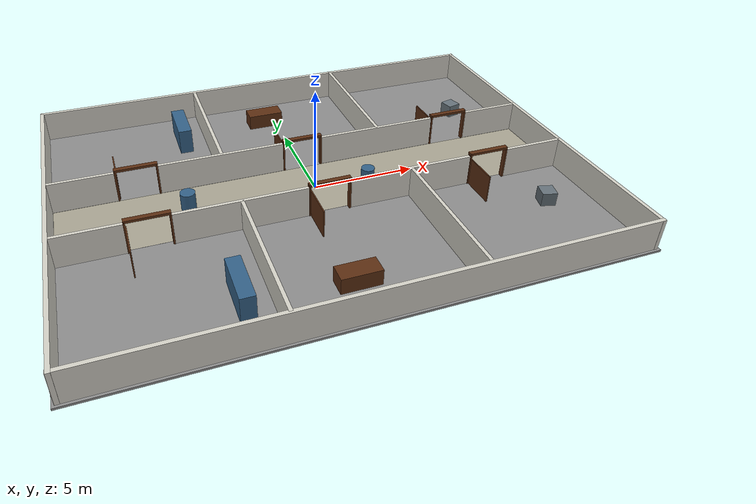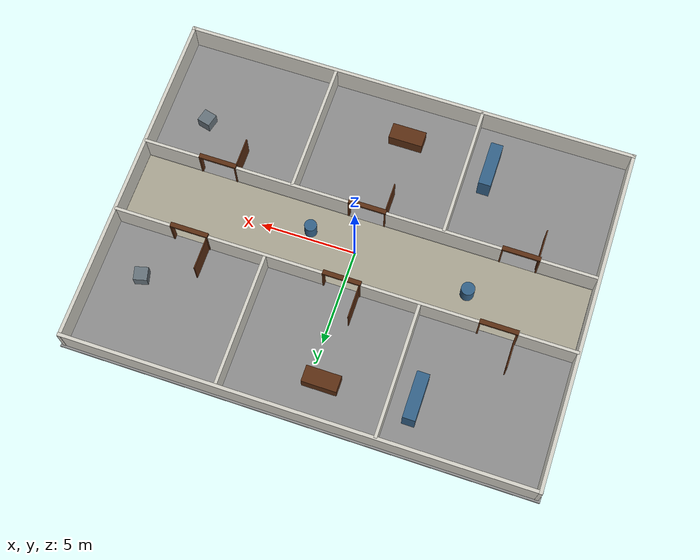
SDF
<sdf version="1.7">
 <world name="v550_rooms">
  <gravity>0 0 -9.8</gravity>
  <physics type="ode">
   <max_step_size>0.001</max_step_size>
   <real_time_update_rate>1000</real_time_update_rate>
   <real_time_factor>1</real_time_factor>
  </physics>
  <scene><ambient>0.65 0.65 0.65 1</ambient><background>0.7 0.73 0.77 1</background><shadows>0</shadows></scene>
  <light name="sun" type="directional">
   <pose>0 0 15 0 -0 0</pose>
   <diffuse>0.8 0.8 0.8 1</diffuse>
   <direction>-0.3 0.2 -1</direction>
   <cast_shadows>0</cast_shadows>
   <attenuation><range>10</range></attenuation>
   <spot><inner_angle>0</inner_angle><outer_angle>0</outer_angle><falloff>0</falloff></spot>
  </light>
  <model name="floor">
   <static>1</static>
   <pose>0 0 -0.05 0 -0 0</pose>
   <link name="link">
    <collision name="collision"><geometry><box><size>24.4 18.4 0.1</size></box></geometry></collision>
    <visual name="visual">
     <geometry><box><size>24.4 18.4 0.1</size></box></geometry>
     <material><ambient>0.55 0.55 0.55 1</ambient><diffuse>0.55 0.55 0.55 1</diffuse></material>
    </visual>
   </link>
  </model>
  <model name="corridor_floor_marking">
   <static>1</static>
   <pose>0 0 0.001 0 -0 0</pose>
   <link name="link">
    <visual name="visual">
     <geometry><box><size>23.8 3.8 0.002</size></box></geometry>
     <material><ambient>0.66 0.64 0.57 1</ambient><diffuse>0.66 0.64 0.57 1</diffuse></material>
    </visual>
   </link>
  </model>
  <model name="outer_north">
   <static>1</static>
   <pose>0 9 0.75 0 -0 0</pose>
   <link name="link">
    <collision name="collision"><geometry><box><size>24.2 0.18 1.5</size></box></geometry></collision>
    <visual name="visual">
     <geometry><box><size>24.2 0.18 1.5</size></box></geometry>
     <material><ambient>0.83 0.82 0.78 1</ambient><diffuse>0.83 0.82 0.78 1</diffuse></material>
    </visual>
   </link>
  </model>
  <model name="outer_south">
   <static>1</static>
   <pose>0 -9 0.75 0 -0 0</pose>
   <link name="link">
    <collision name="collision"><geometry><box><size>24.2 0.18 1.5</size></box></geometry></collision>
    <visual name="visual">
     <geometry><box><size>24.2 0.18 1.5</size></box></geometry>
     <material><ambient>0.83 0.82 0.78 1</ambient><diffuse>0.83 0.82 0.78 1</diffuse></material>
    </visual>
   </link>
  </model>
  <model name="outer_west">
   <static>1</static>
   <pose>-12 0 0.75 0 -0 0</pose>
   <link name="link">
    <collision name="collision"><geometry><box><size>0.18 18.2 1.5</size></box></geometry></collision>
    <visual name="visual">
     <geometry><box><size>0.18 18.2 1.5</size></box></geometry>
     <material><ambient>0.83 0.82 0.78 1</ambient><diffuse>0.83 0.82 0.78 1</diffuse></material>
    </visual>
   </link>
  </model>
  <model name="outer_east">
   <static>1</static>
   <pose>12 0 0.75 0 -0 0</pose>
   <link name="link">
    <collision name="collision"><geometry><box><size>0.18 18.2 1.5</size></box></geometry></collision>
    <visual name="visual">
     <geometry><box><size>0.18 18.2 1.5</size></box></geometry>
     <material><ambient>0.83 0.82 0.78 1</ambient><diffuse>0.83 0.82 0.78 1</diffuse></material>
    </visual>
   </link>
  </model>
  <model name="north_front_0">
   <static>1</static>
   <pose>-10.475 2 0.75 0 -0 0</pose>
   <link name="link">
    <collision name="collision"><geometry><box><size>3.05 0.16 1.5</size></box></geometry></collision>
    <visual name="visual">
     <geometry><box><size>3.05 0.16 1.5</size></box></geometry>
     <material><ambient>0.83 0.82 0.78 1</ambient><diffuse>0.83 0.82 0.78 1</diffuse></material>
    </visual>
   </link>
  </model>
  <model name="north_front_1">
   <static>1</static>
   <pose>-4 2 0.75 0 -0 0</pose>
   <link name="link">
    <collision name="collision"><geometry><box><size>6.1 0.16 1.5</size></box></geometry></collision>
    <visual name="visual">
     <geometry><box><size>6.1 0.16 1.5</size></box></geometry>
     <material><ambient>0.83 0.82 0.78 1</ambient><diffuse>0.83 0.82 0.78 1</diffuse></material>
    </visual>
   </link>
  </model>
  <model name="north_front_2">
   <static>1</static>
   <pose>4 2 0.75 0 -0 0</pose>
   <link name="link">
    <collision name="collision"><geometry><box><size>6.1 0.16 1.5</size></box></geometry></collision>
    <visual name="visual">
     <geometry><box><size>6.1 0.16 1.5</size></box></geometry>
     <material><ambient>0.83 0.82 0.78 1</ambient><diffuse>0.83 0.82 0.78 1</diffuse></material>
    </visual>
   </link>
  </model>
  <model name="north_front_3">
   <static>1</static>
   <pose>10.475 2 0.75 0 -0 0</pose>
   <link name="link">
    <collision name="collision"><geometry><box><size>3.05 0.16 1.5</size></box></geometry></collision>
    <visual name="visual">
     <geometry><box><size>3.05 0.16 1.5</size></box></geometry>
     <material><ambient>0.83 0.82 0.78 1</ambient><diffuse>0.83 0.82 0.78 1</diffuse></material>
    </visual>
   </link>
  </model>
  <model name="north_partition_-4">
   <static>1</static>
   <pose>-4 5.5 0.75 0 -0 0</pose>
   <link name="link">
    <collision name="collision"><geometry><box><size>0.16 7 1.5</size></box></geometry></collision>
    <visual name="visual">
     <geometry><box><size>0.16 7 1.5</size></box></geometry>
     <material><ambient>0.83 0.82 0.78 1</ambient><diffuse>0.83 0.82 0.78 1</diffuse></material>
    </visual>
   </link>
  </model>
  <model name="north_partition_4">
   <static>1</static>
   <pose>4 5.5 0.75 0 -0 0</pose>
   <link name="link">
    <collision name="collision"><geometry><box><size>0.16 7 1.5</size></box></geometry></collision>
    <visual name="visual">
     <geometry><box><size>0.16 7 1.5</size></box></geometry>
     <material><ambient>0.83 0.82 0.78 1</ambient><diffuse>0.83 0.82 0.78 1</diffuse></material>
    </visual>
   </link>
  </model>
  <model name="north_door_0_open_leaf">
   <static>1</static>
   <pose>-8.9 2.88 0.675 0 -0 0</pose>
   <link name="link">
    <collision name="collision"><geometry><box><size>0.055 1.7 1.35</size></box></geometry></collision>
    <visual name="visual">
     <geometry><box><size>0.055 1.7 1.35</size></box></geometry>
     <material><ambient>0.36 0.18 0.07 1</ambient><diffuse>0.36 0.18 0.07 1</diffuse></material>
    </visual>
   </link>
  </model>
  <model name="north_door_0_jamb_0">
   <static>1</static>
   <pose>-8.95 2 0.8 0 -0 0</pose>
   <link name="link">
    <collision name="collision"><geometry><box><size>0.08 0.24 1.6</size></box></geometry></collision>
    <visual name="visual">
     <geometry><box><size>0.08 0.24 1.6</size></box></geometry>
     <material><ambient>0.36 0.18 0.07 1</ambient><diffuse>0.36 0.18 0.07 1</diffuse></material>
    </visual>
   </link>
  </model>
  <model name="north_door_0_jamb_1">
   <static>1</static>
   <pose>-7.05 2 0.8 0 -0 0</pose>
   <link name="link">
    <collision name="collision"><geometry><box><size>0.08 0.24 1.6</size></box></geometry></collision>
    <visual name="visual">
     <geometry><box><size>0.08 0.24 1.6</size></box></geometry>
     <material><ambient>0.36 0.18 0.07 1</ambient><diffuse>0.36 0.18 0.07 1</diffuse></material>
    </visual>
   </link>
  </model>
  <model name="north_door_0_lintel">
   <static>1</static>
   <pose>-8 2 1.6 0 -0 0</pose>
   <link name="link">
    <collision name="collision"><geometry><box><size>1.98 0.24 0.12</size></box></geometry></collision>
    <visual name="visual">
     <geometry><box><size>1.98 0.24 0.12</size></box></geometry>
     <material><ambient>0.36 0.18 0.07 1</ambient><diffuse>0.36 0.18 0.07 1</diffuse></material>
    </visual>
   </link>
  </model>
  <model name="north_room_0_cabinet">
   <static>1</static>
   <pose>-5.2 6.4 0.625 0 -0 0</pose>
   <link name="link">
    <collision name="collision"><geometry><box><size>0.65 2.4 1.25</size></box></geometry></collision>
    <visual name="visual">
     <geometry><box><size>0.65 2.4 1.25</size></box></geometry>
     <material><ambient>0.2 0.38 0.53 1</ambient><diffuse>0.2 0.38 0.53 1</diffuse></material>
    </visual>
   </link>
  </model>
  <model name="north_door_1_open_leaf">
   <static>1</static>
   <pose>-0.9 2.88 0.675 0 -0 0</pose>
   <link name="link">
    <collision name="collision"><geometry><box><size>0.055 1.7 1.35</size></box></geometry></collision>
    <visual name="visual">
     <geometry><box><size>0.055 1.7 1.35</size></box></geometry>
     <material><ambient>0.36 0.18 0.07 1</ambient><diffuse>0.36 0.18 0.07 1</diffuse></material>
    </visual>
   </link>
  </model>
  <model name="north_door_1_jamb_0">
   <static>1</static>
   <pose>-0.95 2 0.8 0 -0 0</pose>
   <link name="link">
    <collision name="collision"><geometry><box><size>0.08 0.24 1.6</size></box></geometry></collision>
    <visual name="visual">
     <geometry><box><size>0.08 0.24 1.6</size></box></geometry>
     <material><ambient>0.36 0.18 0.07 1</ambient><diffuse>0.36 0.18 0.07 1</diffuse></material>
    </visual>
   </link>
  </model>
  <model name="north_door_1_jamb_1">
   <static>1</static>
   <pose>0.95 2 0.8 0 -0 0</pose>
   <link name="link">
    <collision name="collision"><geometry><box><size>0.08 0.24 1.6</size></box></geometry></collision>
    <visual name="visual">
     <geometry><box><size>0.08 0.24 1.6</size></box></geometry>
     <material><ambient>0.36 0.18 0.07 1</ambient><diffuse>0.36 0.18 0.07 1</diffuse></material>
    </visual>
   </link>
  </model>
  <model name="north_door_1_lintel">
   <static>1</static>
   <pose>0 2 1.6 0 -0 0</pose>
   <link name="link">
    <collision name="collision"><geometry><box><size>1.98 0.24 0.12</size></box></geometry></collision>
    <visual name="visual">
     <geometry><box><size>1.98 0.24 0.12</size></box></geometry>
     <material><ambient>0.36 0.18 0.07 1</ambient><diffuse>0.36 0.18 0.07 1</diffuse></material>
    </visual>
   </link>
  </model>
  <model name="north_room_1_desk">
   <static>1</static>
   <pose>-0.6 6.9 0.375 0 -0 0</pose>
   <link name="link">
    <collision name="collision"><geometry><box><size>1.8 0.85 0.75</size></box></geometry></collision>
    <visual name="visual">
     <geometry><box><size>1.8 0.85 0.75</size></box></geometry>
     <material><ambient>0.36 0.18 0.07 1</ambient><diffuse>0.36 0.18 0.07 1</diffuse></material>
    </visual>
   </link>
  </model>
  <model name="north_door_2_open_leaf">
   <static>1</static>
   <pose>7.1 2.88 0.675 0 -0 0</pose>
   <link name="link">
    <collision name="collision"><geometry><box><size>0.055 1.7 1.35</size></box></geometry></collision>
    <visual name="visual">
     <geometry><box><size>0.055 1.7 1.35</size></box></geometry>
     <material><ambient>0.36 0.18 0.07 1</ambient><diffuse>0.36 0.18 0.07 1</diffuse></material>
    </visual>
   </link>
  </model>
  <model name="north_door_2_jamb_0">
   <static>1</static>
   <pose>7.05 2 0.8 0 -0 0</pose>
   <link name="link">
    <collision name="collision"><geometry><box><size>0.08 0.24 1.6</size></box></geometry></collision>
    <visual name="visual">
     <geometry><box><size>0.08 0.24 1.6</size></box></geometry>
     <material><ambient>0.36 0.18 0.07 1</ambient><diffuse>0.36 0.18 0.07 1</diffuse></material>
    </visual>
   </link>
  </model>
  <model name="north_door_2_jamb_1">
   <static>1</static>
   <pose>8.95 2 0.8 0 -0 0</pose>
   <link name="link">
    <collision name="collision"><geometry><box><size>0.08 0.24 1.6</size></box></geometry></collision>
    <visual name="visual">
     <geometry><box><size>0.08 0.24 1.6</size></box></geometry>
     <material><ambient>0.36 0.18 0.07 1</ambient><diffuse>0.36 0.18 0.07 1</diffuse></material>
    </visual>
   </link>
  </model>
  <model name="north_door_2_lintel">
   <static>1</static>
   <pose>8 2 1.6 0 -0 0</pose>
   <link name="link">
    <collision name="collision"><geometry><box><size>1.98 0.24 0.12</size></box></geometry></collision>
    <visual name="visual">
     <geometry><box><size>1.98 0.24 0.12</size></box></geometry>
     <material><ambient>0.36 0.18 0.07 1</ambient><diffuse>0.36 0.18 0.07 1</diffuse></material>
    </visual>
   </link>
  </model>
  <model name="north_room_2_crate">
   <static>1</static>
   <pose>9.7 4.6 0.325 0 -0 0.25</pose>
   <link name="link">
    <collision name="collision"><geometry><box><size>0.7 0.7 0.65</size></box></geometry></collision>
    <visual name="visual">
     <geometry><box><size>0.7 0.7 0.65</size></box></geometry>
     <material><ambient>0.4 0.45 0.48 1</ambient><diffuse>0.4 0.45 0.48 1</diffuse></material>
    </visual>
   </link>
  </model>
  <model name="south_front_0">
   <static>1</static>
   <pose>-10.475 -2 0.75 0 -0 0</pose>
   <link name="link">
    <collision name="collision"><geometry><box><size>3.05 0.16 1.5</size></box></geometry></collision>
    <visual name="visual">
     <geometry><box><size>3.05 0.16 1.5</size></box></geometry>
     <material><ambient>0.83 0.82 0.78 1</ambient><diffuse>0.83 0.82 0.78 1</diffuse></material>
    </visual>
   </link>
  </model>
  <model name="south_front_1">
   <static>1</static>
   <pose>-4 -2 0.75 0 -0 0</pose>
   <link name="link">
    <collision name="collision"><geometry><box><size>6.1 0.16 1.5</size></box></geometry></collision>
    <visual name="visual">
     <geometry><box><size>6.1 0.16 1.5</size></box></geometry>
     <material><ambient>0.83 0.82 0.78 1</ambient><diffuse>0.83 0.82 0.78 1</diffuse></material>
    </visual>
   </link>
  </model>
  <model name="south_front_2">
   <static>1</static>
   <pose>4 -2 0.75 0 -0 0</pose>
   <link name="link">
    <collision name="collision"><geometry><box><size>6.1 0.16 1.5</size></box></geometry></collision>
    <visual name="visual">
     <geometry><box><size>6.1 0.16 1.5</size></box></geometry>
     <material><ambient>0.83 0.82 0.78 1</ambient><diffuse>0.83 0.82 0.78 1</diffuse></material>
    </visual>
   </link>
  </model>
  <model name="south_front_3">
   <static>1</static>
   <pose>10.475 -2 0.75 0 -0 0</pose>
   <link name="link">
    <collision name="collision"><geometry><box><size>3.05 0.16 1.5</size></box></geometry></collision>
    <visual name="visual">
     <geometry><box><size>3.05 0.16 1.5</size></box></geometry>
     <material><ambient>0.83 0.82 0.78 1</ambient><diffuse>0.83 0.82 0.78 1</diffuse></material>
    </visual>
   </link>
  </model>
  <model name="south_partition_-4">
   <static>1</static>
   <pose>-4 -5.5 0.75 0 -0 0</pose>
   <link name="link">
    <collision name="collision"><geometry><box><size>0.16 7 1.5</size></box></geometry></collision>
    <visual name="visual">
     <geometry><box><size>0.16 7 1.5</size></box></geometry>
     <material><ambient>0.83 0.82 0.78 1</ambient><diffuse>0.83 0.82 0.78 1</diffuse></material>
    </visual>
   </link>
  </model>
  <model name="south_partition_4">
   <static>1</static>
   <pose>4 -5.5 0.75 0 -0 0</pose>
   <link name="link">
    <collision name="collision"><geometry><box><size>0.16 7 1.5</size></box></geometry></collision>
    <visual name="visual">
     <geometry><box><size>0.16 7 1.5</size></box></geometry>
     <material><ambient>0.83 0.82 0.78 1</ambient><diffuse>0.83 0.82 0.78 1</diffuse></material>
    </visual>
   </link>
  </model>
  <model name="south_door_0_open_leaf">
   <static>1</static>
   <pose>-8.9 -2.88 0.675 0 -0 0</pose>
   <link name="link">
    <collision name="collision"><geometry><box><size>0.055 1.7 1.35</size></box></geometry></collision>
    <visual name="visual">
     <geometry><box><size>0.055 1.7 1.35</size></box></geometry>
     <material><ambient>0.36 0.18 0.07 1</ambient><diffuse>0.36 0.18 0.07 1</diffuse></material>
    </visual>
   </link>
  </model>
  <model name="south_door_0_jamb_0">
   <static>1</static>
   <pose>-8.95 -2 0.8 0 -0 0</pose>
   <link name="link">
    <collision name="collision"><geometry><box><size>0.08 0.24 1.6</size></box></geometry></collision>
    <visual name="visual">
     <geometry><box><size>0.08 0.24 1.6</size></box></geometry>
     <material><ambient>0.36 0.18 0.07 1</ambient><diffuse>0.36 0.18 0.07 1</diffuse></material>
    </visual>
   </link>
  </model>
  <model name="south_door_0_jamb_1">
   <static>1</static>
   <pose>-7.05 -2 0.8 0 -0 0</pose>
   <link name="link">
    <collision name="collision"><geometry><box><size>0.08 0.24 1.6</size></box></geometry></collision>
    <visual name="visual">
     <geometry><box><size>0.08 0.24 1.6</size></box></geometry>
     <material><ambient>0.36 0.18 0.07 1</ambient><diffuse>0.36 0.18 0.07 1</diffuse></material>
    </visual>
   </link>
  </model>
  <model name="south_door_0_lintel">
   <static>1</static>
   <pose>-8 -2 1.6 0 -0 0</pose>
   <link name="link">
    <collision name="collision"><geometry><box><size>1.98 0.24 0.12</size></box></geometry></collision>
    <visual name="visual">
     <geometry><box><size>1.98 0.24 0.12</size></box></geometry>
     <material><ambient>0.36 0.18 0.07 1</ambient><diffuse>0.36 0.18 0.07 1</diffuse></material>
    </visual>
   </link>
  </model>
  <model name="south_room_0_cabinet">
   <static>1</static>
   <pose>-5.2 -6.4 0.625 0 -0 0</pose>
   <link name="link">
    <collision name="collision"><geometry><box><size>0.65 2.4 1.25</size></box></geometry></collision>
    <visual name="visual">
     <geometry><box><size>0.65 2.4 1.25</size></box></geometry>
     <material><ambient>0.2 0.38 0.53 1</ambient><diffuse>0.2 0.38 0.53 1</diffuse></material>
    </visual>
   </link>
  </model>
  <model name="south_door_1_open_leaf">
   <static>1</static>
   <pose>-0.9 -2.88 0.675 0 -0 0</pose>
   <link name="link">
    <collision name="collision"><geometry><box><size>0.055 1.7 1.35</size></box></geometry></collision>
    <visual name="visual">
     <geometry><box><size>0.055 1.7 1.35</size></box></geometry>
     <material><ambient>0.36 0.18 0.07 1</ambient><diffuse>0.36 0.18 0.07 1</diffuse></material>
    </visual>
   </link>
  </model>
  <model name="south_door_1_jamb_0">
   <static>1</static>
   <pose>-0.95 -2 0.8 0 -0 0</pose>
   <link name="link">
    <collision name="collision"><geometry><box><size>0.08 0.24 1.6</size></box></geometry></collision>
    <visual name="visual">
     <geometry><box><size>0.08 0.24 1.6</size></box></geometry>
     <material><ambient>0.36 0.18 0.07 1</ambient><diffuse>0.36 0.18 0.07 1</diffuse></material>
    </visual>
   </link>
  </model>
  <model name="south_door_1_jamb_1">
   <static>1</static>
   <pose>0.95 -2 0.8 0 -0 0</pose>
   <link name="link">
    <collision name="collision"><geometry><box><size>0.08 0.24 1.6</size></box></geometry></collision>
    <visual name="visual">
     <geometry><box><size>0.08 0.24 1.6</size></box></geometry>
     <material><ambient>0.36 0.18 0.07 1</ambient><diffuse>0.36 0.18 0.07 1</diffuse></material>
    </visual>
   </link>
  </model>
  <model name="south_door_1_lintel">
   <static>1</static>
   <pose>0 -2 1.6 0 -0 0</pose>
   <link name="link">
    <collision name="collision"><geometry><box><size>1.98 0.24 0.12</size></box></geometry></collision>
    <visual name="visual">
     <geometry><box><size>1.98 0.24 0.12</size></box></geometry>
     <material><ambient>0.36 0.18 0.07 1</ambient><diffuse>0.36 0.18 0.07 1</diffuse></material>
    </visual>
   </link>
  </model>
  <model name="south_room_1_desk">
   <static>1</static>
   <pose>-0.6 -6.9 0.375 0 -0 0</pose>
   <link name="link">
    <collision name="collision"><geometry><box><size>1.8 0.85 0.75</size></box></geometry></collision>
    <visual name="visual">
     <geometry><box><size>1.8 0.85 0.75</size></box></geometry>
     <material><ambient>0.36 0.18 0.07 1</ambient><diffuse>0.36 0.18 0.07 1</diffuse></material>
    </visual>
   </link>
  </model>
  <model name="south_door_2_open_leaf">
   <static>1</static>
   <pose>7.1 -2.88 0.675 0 -0 0</pose>
   <link name="link">
    <collision name="collision"><geometry><box><size>0.055 1.7 1.35</size></box></geometry></collision>
    <visual name="visual">
     <geometry><box><size>0.055 1.7 1.35</size></box></geometry>
     <material><ambient>0.36 0.18 0.07 1</ambient><diffuse>0.36 0.18 0.07 1</diffuse></material>
    </visual>
   </link>
  </model>
  <model name="south_door_2_jamb_0">
   <static>1</static>
   <pose>7.05 -2 0.8 0 -0 0</pose>
   <link name="link">
    <collision name="collision"><geometry><box><size>0.08 0.24 1.6</size></box></geometry></collision>
    <visual name="visual">
     <geometry><box><size>0.08 0.24 1.6</size></box></geometry>
     <material><ambient>0.36 0.18 0.07 1</ambient><diffuse>0.36 0.18 0.07 1</diffuse></material>
    </visual>
   </link>
  </model>
  <model name="south_door_2_jamb_1">
   <static>1</static>
   <pose>8.95 -2 0.8 0 -0 0</pose>
   <link name="link">
    <collision name="collision"><geometry><box><size>0.08 0.24 1.6</size></box></geometry></collision>
    <visual name="visual">
     <geometry><box><size>0.08 0.24 1.6</size></box></geometry>
     <material><ambient>0.36 0.18 0.07 1</ambient><diffuse>0.36 0.18 0.07 1</diffuse></material>
    </visual>
   </link>
  </model>
  <model name="south_door_2_lintel">
   <static>1</static>
   <pose>8 -2 1.6 0 -0 0</pose>
   <link name="link">
    <collision name="collision"><geometry><box><size>1.98 0.24 0.12</size></box></geometry></collision>
    <visual name="visual">
     <geometry><box><size>1.98 0.24 0.12</size></box></geometry>
     <material><ambient>0.36 0.18 0.07 1</ambient><diffuse>0.36 0.18 0.07 1</diffuse></material>
    </visual>
   </link>
  </model>
  <model name="south_room_2_crate">
   <static>1</static>
   <pose>9.7 -4.6 0.325 0 0 -0.25</pose>
   <link name="link">
    <collision name="collision"><geometry><box><size>0.7 0.7 0.65</size></box></geometry></collision>
    <visual name="visual">
     <geometry><box><size>0.7 0.7 0.65</size></box></geometry>
     <material><ambient>0.4 0.45 0.48 1</ambient><diffuse>0.4 0.45 0.48 1</diffuse></material>
    </visual>
   </link>
  </model>
  <model name="corridor_barrel_0">
   <static>1</static>
   <pose>-6 0.3 0.425 0 -0 0</pose>
   <link name="link">
    <collision name="collision">
     <geometry><cylinder><radius>0.35</radius><length>0.85</length></cylinder></geometry>
    </collision>
    <visual name="visual">
     <geometry><cylinder><radius>0.35</radius><length>0.85</length></cylinder></geometry>
     <material><ambient>0.2 0.38 0.53 1</ambient><diffuse>0.2 0.38 0.53 1</diffuse></material>
    </visual>
   </link>
  </model>
  <model name="corridor_barrel_1">
   <static>1</static>
   <pose>2.5 -0.45 0.425 0 -0 0</pose>
   <link name="link">
    <collision name="collision">
     <geometry><cylinder><radius>0.32</radius><length>0.85</length></cylinder></geometry>
    </collision>
    <visual name="visual">
     <geometry><cylinder><radius>0.32</radius><length>0.85</length></cylinder></geometry>
     <material><ambient>0.2 0.38 0.53 1</ambient><diffuse>0.2 0.38 0.53 1</diffuse></material>
    </visual>
   </link>
  </model>
  <magnetic_field>6e-06 2.3e-05 -4.2e-05</magnetic_field>
  <atmosphere type="adiabatic"/>
  <audio><device>default</device></audio>
  <spherical_coordinates>
   <surface_model>EARTH_WGS84</surface_model>
   <latitude_deg>0</latitude_deg>
   <longitude_deg>0</longitude_deg>
   <elevation>0</elevation>
   <heading_deg>0</heading_deg>
  </spherical_coordinates>
 </world>
</sdf>
